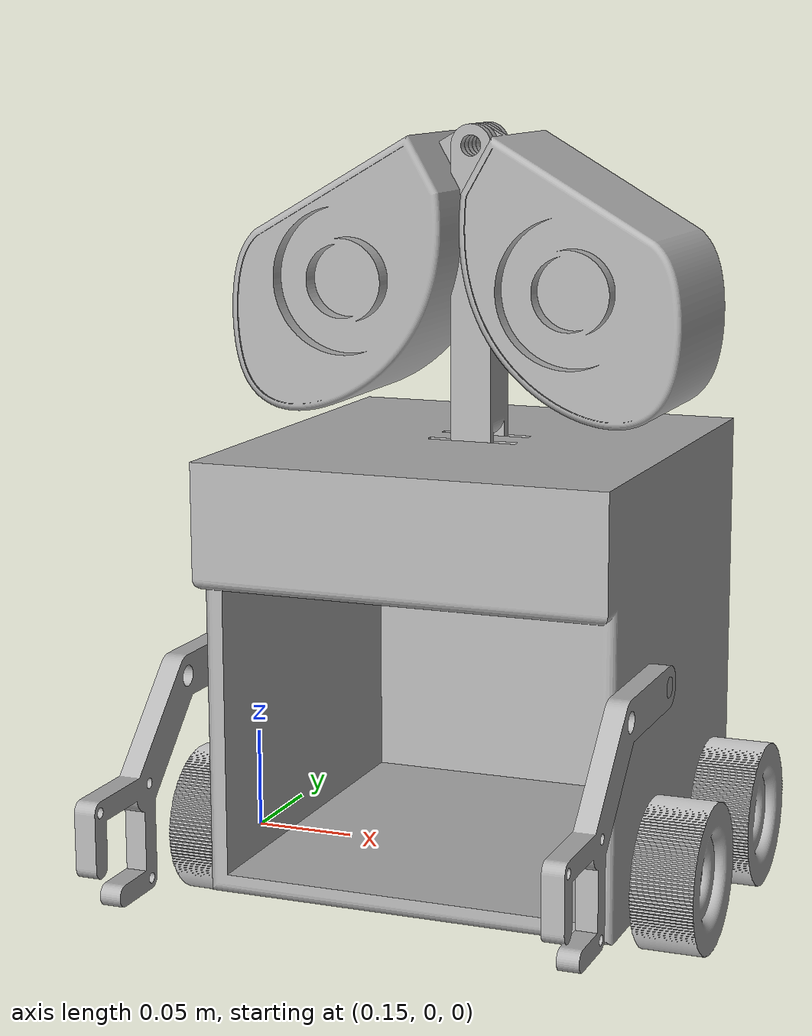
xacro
<?xml version="1.0" ?>
<robot name="Wall-E" xmlns:xacro="http://www.ros.org/wiki/xacro">

<xacro:include filename="$(find Wall-E_description)/urdf/materials.xacro" />
<xacro:include filename="$(find Wall-E_description)/urdf/sensors.xacro" />
<xacro:include filename="$(find Wall-E_description)/urdf/Wall-E.gazebo" />
<link name="base_link">
  <inertial>
    <origin xyz="0.26999999999943136 0.007854232303995057 0.12120278975860414" rpy="0 0 0"/>
    <mass value="18.523817500046533"/>
    <inertia ixx="0.193319" iyy="0.20419" izz="0.17556" ixy="-0.0" iyz="0.011103" ixz="0.0"/>
  </inertial>
  <visual>
    <origin xyz="0 0 0" rpy="0 0 0"/>
    <geometry>
      <mesh filename="file://$(find Wall-E_description)/meshes/base_link.stl" scale="0.001 0.001 0.001"/>
    </geometry>
    <material name="silver"/>
  </visual>
  <collision>
    <origin xyz="0 0 0" rpy="0 0 0"/>
    <geometry>
      <mesh filename="file://$(find Wall-E_description)/meshes/base_link.stl" scale="0.001 0.001 0.001"/>
    </geometry>
  </collision>
</link>

<link name="Button_Head_Small_Solid_Rivet_ASME_B18.1.1_-_3/8_x_1_1/4_Steel_Plain_1">
  <inertial>
    <origin xyz="3.3112401709445294e-13 0.009838851463327058 2.979646446243933e-09" rpy="0 0 0"/>
    <mass value="0.025973504992578146"/>
    <inertia ixx="4e-06" iyy="0.0" izz="4e-06" ixy="-0.0" iyz="-0.0" ixz="-0.0"/>
  </inertial>
  <visual>
    <origin xyz="-0.27 0.012358 -0.2" rpy="0 0 0"/>
    <geometry>
      <mesh filename="file://$(find Wall-E_description)/meshes/Button_Head_Small_Solid_Rivet_ASME_B18.1.1_-_3_8_x_1_1_4_Steel_Plain_1.stl" scale="0.001 0.001 0.001"/>
    </geometry>
    <material name="silver"/>
  </visual>
  <collision>
    <origin xyz="-0.27 0.012358 -0.2" rpy="0 0 0"/>
    <geometry>
      <mesh filename="file://$(find Wall-E_description)/meshes/Button_Head_Small_Solid_Rivet_ASME_B18.1.1_-_3_8_x_1_1_4_Steel_Plain_1.stl" scale="0.001 0.001 0.001"/>
    </geometry>
  </collision>
</link>

<link name="Wheel2_1">
  <inertial>
    <origin xyz="-0.2780000000000001 -3.4358904910797294e-07 -2.882384547153727e-07" rpy="0 0 0"/>
    <mass value="0.7992946524288796"/>
    <inertia ixx="0.000578" iyy="0.00034" izz="0.00034" ixy="0.0" iyz="-0.0" ixz="0.0"/>
  </inertial>
  <visual>
    <origin xyz="-0.665 0.042358 -0.017023" rpy="0 0 0"/>
    <geometry>
      <mesh filename="file://$(find Wall-E_description)/meshes/Wheel2_1.stl" scale="0.001 0.001 0.001"/>
    </geometry>
    <material name="silver"/>
  </visual>
  <collision>
    <origin xyz="-0.665 0.042358 -0.017023" rpy="0 0 0"/>
    <geometry>
      <mesh filename="file://$(find Wall-E_description)/meshes/Wheel2_1.stl" scale="0.001 0.001 0.001"/>
    </geometry>
  </collision>
</link>

<link name="Wheels_1">
  <inertial>
    <origin xyz="-0.2780000000000001 -3.4358904910797294e-07 -2.882384547153727e-07" rpy="0 0 0"/>
    <mass value="0.7992946524288796"/>
    <inertia ixx="0.000578" iyy="0.00034" izz="0.00034" ixy="0.0" iyz="-0.0" ixz="0.0"/>
  </inertial>
  <visual>
    <origin xyz="-0.665 -0.057642 -0.017023" rpy="0 0 0"/>
    <geometry>
      <mesh filename="file://$(find Wall-E_description)/meshes/Wheels_1.stl" scale="0.001 0.001 0.001"/>
    </geometry>
    <material name="silver"/>
  </visual>
  <collision>
    <origin xyz="-0.665 -0.057642 -0.017023" rpy="0 0 0"/>
    <geometry>
      <mesh filename="file://$(find Wall-E_description)/meshes/Wheels_1.stl" scale="0.001 0.001 0.001"/>
    </geometry>
  </collision>
</link>

<link name="Wheels3_1">
  <inertial>
    <origin xyz="-0.262 -3.4358904910797294e-07 -2.882384547153727e-07" rpy="0 0 0"/>
    <mass value="0.7992946524288796"/>
    <inertia ixx="0.000578" iyy="0.00034" izz="0.00034" ixy="0.0" iyz="-0.0" ixz="0.0"/>
  </inertial>
  <visual>
    <origin xyz="-0.415 0.042358 -0.017023" rpy="0 0 0"/>
    <geometry>
      <mesh filename="file://$(find Wall-E_description)/meshes/Wheels3_1.stl" scale="0.001 0.001 0.001"/>
    </geometry>
    <material name="silver"/>
  </visual>
  <collision>
    <origin xyz="-0.415 0.042358 -0.017023" rpy="0 0 0"/>
    <geometry>
      <mesh filename="file://$(find Wall-E_description)/meshes/Wheels3_1.stl" scale="0.001 0.001 0.001"/>
    </geometry>
  </collision>
</link>

<link name="Wheels4_1">
  <inertial>
    <origin xyz="-0.262 -3.4358904910797294e-07 -2.882384547153727e-07" rpy="0 0 0"/>
    <mass value="0.7992946524288796"/>
    <inertia ixx="0.000578" iyy="0.00034" izz="0.00034" ixy="-0.0" iyz="-0.0" ixz="0.0"/>
  </inertial>
  <visual>
    <origin xyz="-0.415 -0.057642 -0.017023" rpy="0 0 0"/>
    <geometry>
      <mesh filename="file://$(find Wall-E_description)/meshes/Wheels4_1.stl" scale="0.001 0.001 0.001"/>
    </geometry>
    <material name="silver"/>
  </visual>
  <collision>
    <origin xyz="-0.415 -0.057642 -0.017023" rpy="0 0 0"/>
    <geometry>
      <mesh filename="file://$(find Wall-E_description)/meshes/Wheels4_1.stl" scale="0.001 0.001 0.001"/>
    </geometry>
  </collision>
</link>

<link name="Simple-Hand2_1">
  <inertial>
    <origin xyz="0.0050000000000000044 -0.07714337017356153 -0.02804693786141821" rpy="0 0 0"/>
    <mass value="0.29288104639713186"/>
    <inertia ixx="0.000758" iyy="0.00024" izz="0.000523" ixy="0.0" iyz="-0.000276" ixz="0.0"/>
  </inertial>
  <visual>
    <origin xyz="-0.158 0.052358 -0.109854" rpy="0 0 0"/>
    <geometry>
      <mesh filename="file://$(find Wall-E_description)/meshes/Simple-Hand2_1.stl" scale="0.001 0.001 0.001"/>
    </geometry>
    <material name="silver"/>
  </visual>
  <collision>
    <origin xyz="-0.158 0.052358 -0.109854" rpy="0 0 0"/>
    <geometry>
      <mesh filename="file://$(find Wall-E_description)/meshes/Simple-Hand2_1.stl" scale="0.001 0.001 0.001"/>
    </geometry>
  </collision>
</link>

<link name="Simple-Hand_1">
  <inertial>
    <origin xyz="-0.0050000000000000044 -0.07714337017356147 -0.02804693786141821" rpy="0 0 0"/>
    <mass value="0.29288104639713186"/>
    <inertia ixx="0.000758" iyy="0.00024" izz="0.000523" ixy="0.0" iyz="-0.000276" ixz="0.0"/>
  </inertial>
  <visual>
    <origin xyz="-0.382 0.052358 -0.109854" rpy="0 0 0"/>
    <geometry>
      <mesh filename="file://$(find Wall-E_description)/meshes/Simple-Hand_1.stl" scale="0.001 0.001 0.001"/>
    </geometry>
    <material name="silver"/>
  </visual>
  <collision>
    <origin xyz="-0.382 0.052358 -0.109854" rpy="0 0 0"/>
    <geometry>
      <mesh filename="file://$(find Wall-E_description)/meshes/Simple-Hand_1.stl" scale="0.001 0.001 0.001"/>
    </geometry>
  </collision>
</link>

<link name="Neck_1">
  <inertial>
    <origin xyz="-2.905723994750531e-10 0.007499656404584607 0.07496724373184233" rpy="0 0 0"/>
    <mass value="0.5436470338232596"/>
    <inertia ixx="0.000948" iyy="0.000935" izz="4.9e-05" ixy="0.0" iyz="-0.0" ixz="0.0"/>
  </inertial>
  <visual>
    <origin xyz="-0.27 0.007358 -0.2" rpy="0 0 0"/>
    <geometry>
      <mesh filename="file://$(find Wall-E_description)/meshes/Neck_1.stl" scale="0.001 0.001 0.001"/>
    </geometry>
    <material name="silver"/>
  </visual>
  <collision>
    <origin xyz="-0.27 0.007358 -0.2" rpy="0 0 0"/>
    <geometry>
      <mesh filename="file://$(find Wall-E_description)/meshes/Neck_1.stl" scale="0.001 0.001 0.001"/>
    </geometry>
  </collision>
</link>

<link name="Eye-Piece_1">
  <inertial>
    <origin xyz="-0.07165352361085467 -0.008032356043059708 -0.047504700230867725" rpy="0 0 0"/>
    <mass value="5.698949412548633"/>
    <inertia ixx="0.007125" iyy="0.010083" izz="0.008478" ixy="-3.2e-05" iyz="-1.3e-05" ixz="-0.002112"/>
  </inertial>
  <visual>
    <origin xyz="-0.27 -0.007642 -0.349854" rpy="0 0 0"/>
    <geometry>
      <mesh filename="file://$(find Wall-E_description)/meshes/Eye-Piece_1.stl" scale="0.001 0.001 0.001"/>
    </geometry>
    <material name="silver"/>
  </visual>
  <collision>
    <origin xyz="-0.27 -0.007642 -0.349854" rpy="0 0 0"/>
    <geometry>
      <mesh filename="file://$(find Wall-E_description)/meshes/Eye-Piece_1.stl" scale="0.001 0.001 0.001"/>
    </geometry>
  </collision>
</link>

<link name="Eye-Piece_other_1">
  <inertial>
    <origin xyz="0.0716609311664021 0.0019831268115849073 -0.04758084718356914" rpy="0 0 0"/>
    <mass value="5.681779708864804"/>
    <inertia ixx="0.007088" iyy="0.009984" izz="0.008407" ixy="-3e-06" iyz="-3e-06" ixz="0.002067"/>
  </inertial>
  <visual>
    <origin xyz="-0.27 0.002358 -0.349854" rpy="0 0 0"/>
    <geometry>
      <mesh filename="file://$(find Wall-E_description)/meshes/Eye-Piece_other_1.stl" scale="0.001 0.001 0.001"/>
    </geometry>
    <material name="silver"/>
  </visual>
  <collision>
    <origin xyz="-0.27 0.002358 -0.349854" rpy="0 0 0"/>
    <geometry>
      <mesh filename="file://$(find Wall-E_description)/meshes/Eye-Piece_other_1.stl" scale="0.001 0.001 0.001"/>
    </geometry>
  </collision>
</link>

<joint name="Rigid 5" type="fixed">
  <origin xyz="0.0 -0.005 0.0" rpy="0 0 0"/>
  <parent link="Neck_1"/>
  <child link="Button_Head_Small_Solid_Rivet_ASME_B18.1.1_-_3/8_x_1_1/4_Steel_Plain_1"/>
</joint>

<joint name="Revolute 8" type="continuous">
  <origin xyz="0.665 -0.042358 0.017023" rpy="0 0 0"/>
  <parent link="base_link"/>
  <child link="Wheel2_1"/>
  <axis xyz="1.0 0.0 0.0"/>
</joint>

<joint name="Revolute 9" type="continuous">
  <origin xyz="0.665 0.057642 0.017023" rpy="0 0 0"/>
  <parent link="base_link"/>
  <child link="Wheels_1"/>
  <axis xyz="1.0 0.0 0.0"/>
</joint>

<joint name="Revolute 10" type="continuous">
  <origin xyz="0.415 -0.042358 0.017023" rpy="0 0 0"/>
  <parent link="base_link"/>
  <child link="Wheels3_1"/>
  <axis xyz="-1.0 0.0 0.0"/>
</joint>

<joint name="Revolute 11" type="continuous">
  <origin xyz="0.415 0.057642 0.017023" rpy="0 0 0"/>
  <parent link="base_link"/>
  <child link="Wheels4_1"/>
  <axis xyz="-1.0 0.0 0.0"/>
</joint>

<joint name="Revolute 27" type="revolute">
  <origin xyz="0.158 -0.052358 0.109854" rpy="0 0 0"/>
  <parent link="base_link"/>
  <child link="Simple-Hand2_1"/>
  <axis xyz="-1.0 0.0 0.0"/>
  <limit upper="1.570796" lower="-0.436332" effort="100" velocity="100"/>
</joint>

<joint name="Revolute 28" type="revolute">
  <origin xyz="0.382 -0.052358 0.109854" rpy="0 0 0"/>
  <parent link="base_link"/>
  <child link="Simple-Hand_1"/>
  <axis xyz="1.0 0.0 0.0"/>
  <limit upper="0.523599" lower="-1.570796" effort="100" velocity="100"/>
</joint>

<joint name="Revolute 29" type="revolute">
  <origin xyz="0.27 -0.007358 0.2" rpy="0 0 0"/>
  <parent link="base_link"/>
  <child link="Neck_1"/>
  <axis xyz="0.0 -1.0 0.0"/>
  <limit upper="0.698132" lower="-0.698132" effort="100" velocity="100"/>
</joint>

<joint name="Revolute 32" type="revolute">
  <origin xyz="0.0 0.015 0.149854" rpy="0 0 0"/>
  <parent link="Neck_1"/>
  <child link="Eye-Piece_1"/>
  <axis xyz="0.0 -1.0 0.0"/>
  <limit upper="0.261799" lower="0.261799" effort="100" velocity="100"/>
</joint>

<joint name="Revolute 33" type="revolute">
  <origin xyz="0.0 -0.01 0.0" rpy="0 0 0"/>
  <parent link="Eye-Piece_1"/>
  <child link="Eye-Piece_other_1"/>
  <axis xyz="0.0 1.0 0.0"/>
  <limit upper="0.523599" lower="0.523599" effort="100" velocity="100"/>
</joint>

</robot>

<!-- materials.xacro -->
<robot name="Wall-E" xmlns:xacro="http://www.ros.org/wiki/xacro" >

<material name="silver">
  <color rgba="0.700 0.700 0.700 1.000"/>
</material>

</robot>
